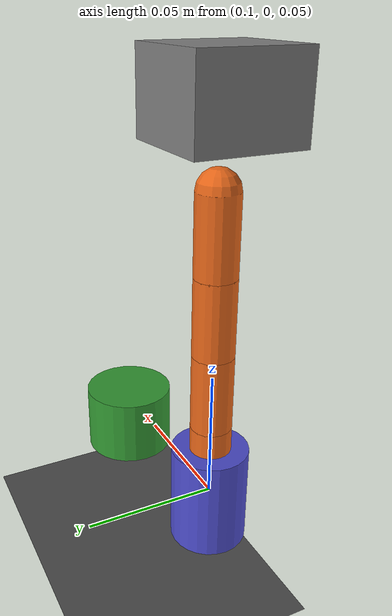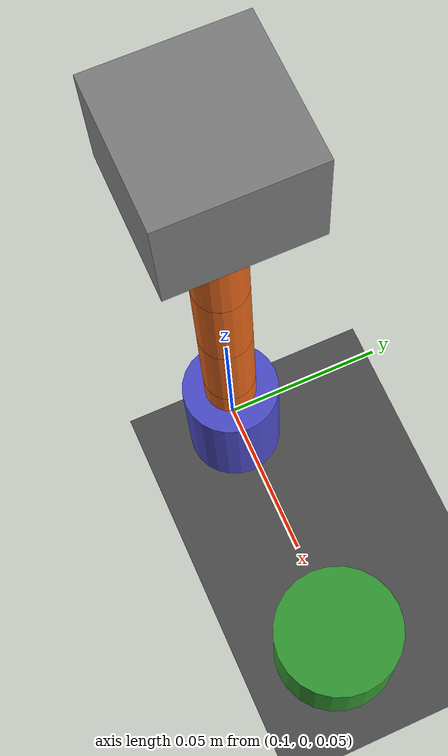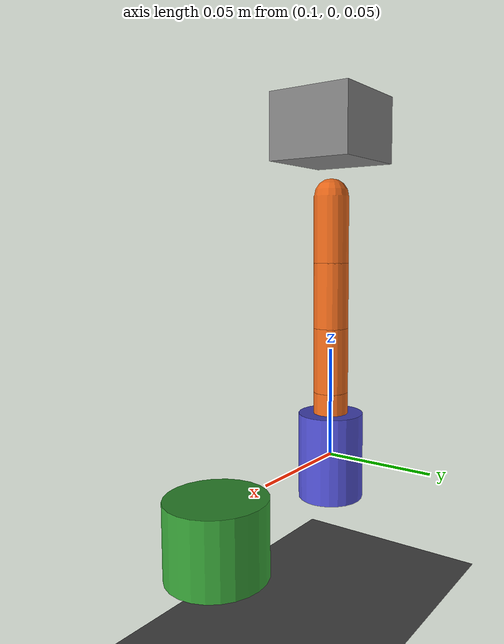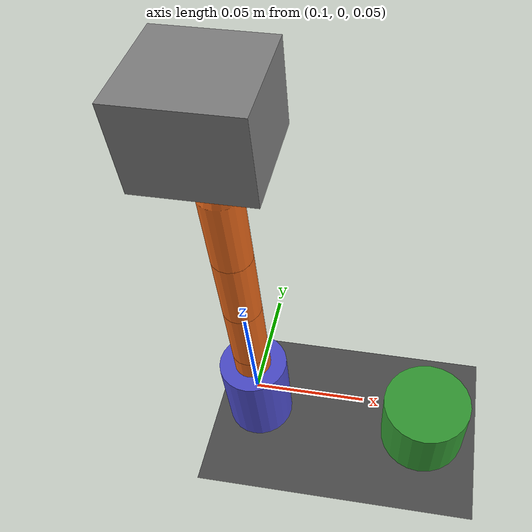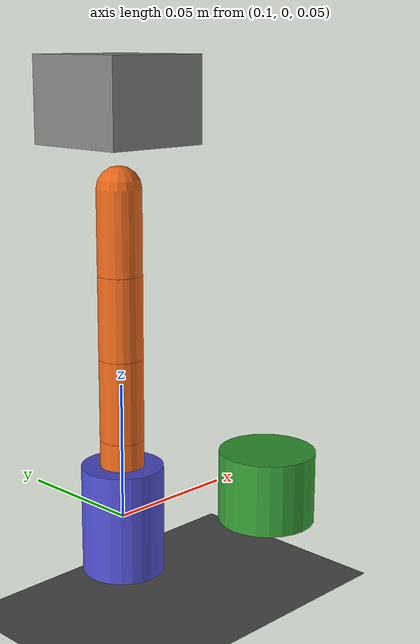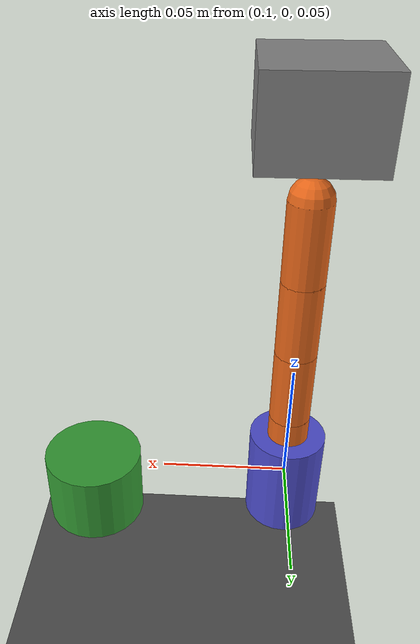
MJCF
<mujoco model="cable_insertion">
  <option gravity="0 0 -9.81" timestep="0.001"/>
  <worldbody>
    <light pos="0 0 2" dir="0 0 -1"/>
    <light pos="0.3 0.3 0.5" dir="-0.3 -0.3 -1" diffuse="0.4 0.4 0.4"/>
    <geom type="plane" size="0.5 0.5 0.01" rgba="0.3 0.3 0.3 1"/>

    <!-- Fixed cameras -->
    <camera name="overhead" pos="0.15 0 0.45" xyaxes="1 0 0 0 1 0"/>
    <camera name="side" pos="0.3 0 0.2" xyaxes="0 1 0 -0.5 0 1" fovy="60"/>

    <body name="socket" pos="0.18 0 0.04">
      <geom type="cylinder" size="0.02 0.015" rgba="0.2 0.6 0.2 1" contype="0" conaffinity="0"/>
    </body>
    <body name="gripper" pos="0.1 0 0.2">
      <joint name="x" type="slide" axis="1 0 0" range="-0.3 0.3"/>
      <joint name="y" type="slide" axis="0 1 0" range="-0.3 0.3"/>
      <joint name="z" type="slide" axis="0 0 1" range="-0.2 0.4"/>

      <!-- Wrist camera: moves with gripper, looks down along cable -->
      <camera name="wrist" pos="0 0 -0.02" xyaxes="1 0 0 0 1 0" fovy="90"/>

      <geom type="box" size="0.02 0.02 0.015" rgba="0.5 0.5 0.5 1"/>
      <body name="seg1" pos="0 0 -0.03">
        <joint type="ball" damping="0.2" stiffness="0.1"/>
        <geom type="capsule" size="0.008" fromto="0 0 0 0 0 -0.03" rgba="0.9 0.4 0.1 1"/>

        <body name="seg2" pos="0 0 -0.03">
          <joint type="ball" damping="0.2" stiffness="0.1"/>
          <geom type="capsule" size="0.008" fromto="0 0 0 0 0 -0.03" rgba="0.9 0.4 0.1 1"/>

          <body name="seg3" pos="0 0 -0.03">
            <joint type="ball" damping="0.2" stiffness="0.1"/>
            <geom type="capsule" size="0.008" fromto="0 0 0 0 0 -0.03" rgba="0.9 0.4 0.1 1"/>

            <body name="seg4" pos="0 0 -0.03">
              <joint type="ball" damping="0.2" stiffness="0.1"/>
              <geom type="capsule" size="0.008" fromto="0 0 0 0 0 -0.03" rgba="0.9 0.4 0.1 1"/>

              <body name="connector" pos="0 0 -0.03">
                <joint type="ball" damping="0.2" stiffness="0.1"/>
                <geom type="cylinder" size="0.015 0.02" rgba="0.3 0.3 0.8 1"/>
              </body>
            </body>
          </body>
        </body>
      </body>
    </body>
  </worldbody>
  <actuator>
    <position joint="x" kp="500"/>
    <position joint="y" kp="500"/>
    <position joint="z" kp="500"/>
  </actuator>
  <sensor>
    <framepos objtype="body" objname="connector" name="connector_pos"/>
    <framepos objtype="body" objname="gripper" name="gripper_pos"/>
  </sensor>
</mujoco>
